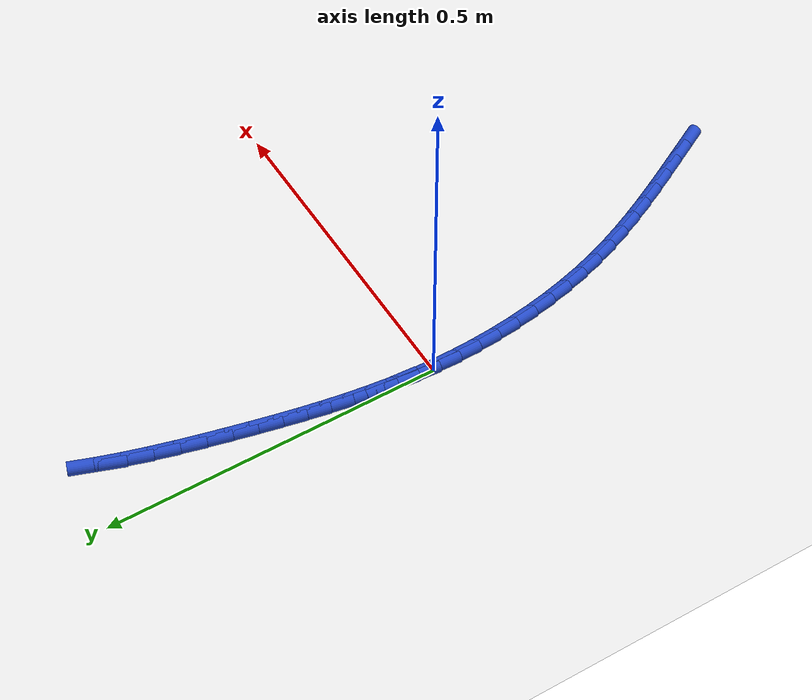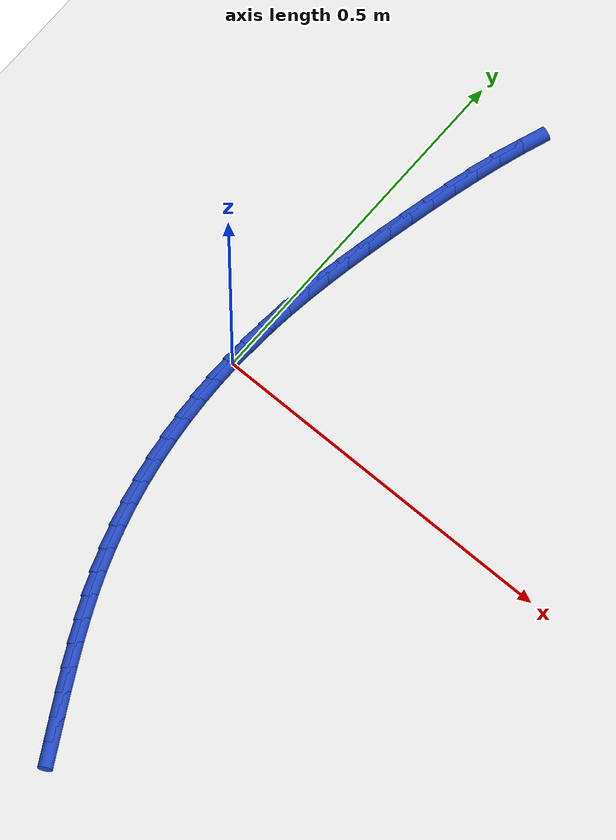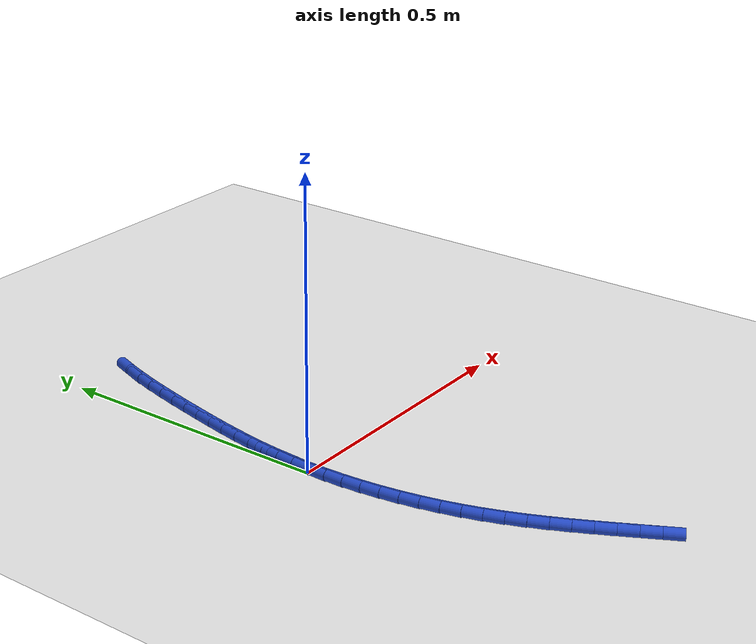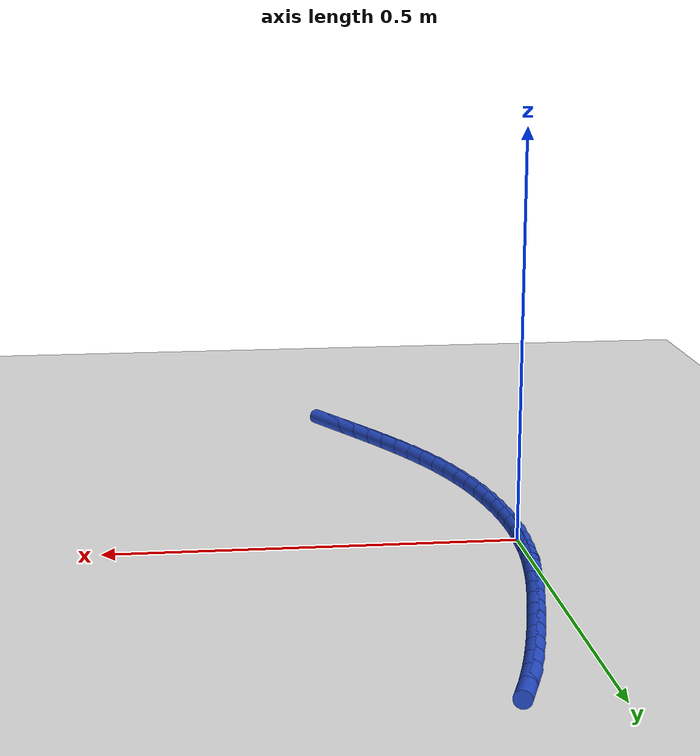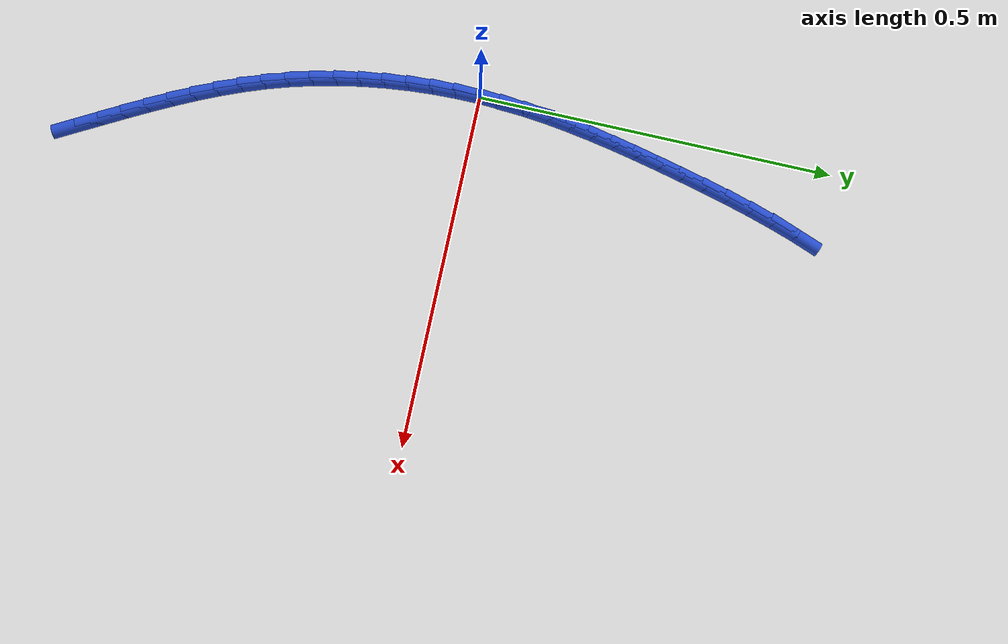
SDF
<sdf version="1.6">
 <world name="default">
  <model name="ground_plane">
   <static>1</static>
   <link name="link">
    <collision name="collision">
     <geometry><plane><normal>0 0 1</normal><size>100 100</size></plane></geometry>
     <surface><friction><ode><mu>100</mu><mu2>50</mu2></ode></friction></surface>
    </collision>
    <visual name="visual">
     <cast_shadows>0</cast_shadows>
     <geometry><plane><normal>0 0 1</normal><size>100 100</size></plane></geometry>
     <material>
      <script><uri>file://media/materials/scripts/gazebo.material</uri><name>Gazebo/WhiteGlow</name></script>
     </material>
    </visual>
   </link>
  </model>
  <model name="line">
   <link name="link_0">
    <pose>-1.734723475976807e-18 3.469446951953614e-17 0.01 0 1.57 1.531801911281765</pose>
    <collision name="collision">
     <geometry><cylinder><radius>0.01</radius><length>0.08</length></cylinder></geometry>
    </collision>
    <visual name="visual">
     <material>
      <script><name>Gazebo/Blue</name><uri>file://media/materials/scripts/gazebo.material</uri></script>
     </material>
     <geometry><cylinder><radius>0.01</radius><length>0.08</length></cylinder></geometry>
    </visual>
   </link>
   <link name="link_1">
    <pose>0.0012734789865258829 0.032641429173401716 0.01 0 1.57 1.4968240519907146</pose>
    <collision name="collision">
     <geometry><cylinder><radius>0.01</radius><length>0.08</length></cylinder></geometry>
    </collision>
    <visual name="visual">
     <material>
      <script><name>Gazebo/Blue</name><uri>file://media/materials/scripts/gazebo.material</uri></script>
     </material>
     <geometry><cylinder><radius>0.01</radius><length>0.08</length></cylinder></geometry>
    </visual>
   </link>
   <link name="link_2">
    <pose>0.003676940168216866 0.06507352291375909 0.01 0 1.57 1.464726742741518</pose>
    <collision name="collision">
     <geometry><cylinder><radius>0.01</radius><length>0.08</length></cylinder></geometry>
    </collision>
    <visual name="visual">
     <material>
      <script><name>Gazebo/Blue</name><uri>file://media/materials/scripts/gazebo.material</uri></script>
     </material>
     <geometry><cylinder><radius>0.01</radius><length>0.08</length></cylinder></geometry>
    </visual>
   </link>
   <link name="link_3">
    <pose>0.007118392818827004 0.09739698939090188 0.01 0 1.57 1.4358523234587244</pose>
    <collision name="collision">
     <geometry><cylinder><radius>0.01</radius><length>0.08</length></cylinder></geometry>
    </collision>
    <visual name="visual">
     <material>
      <script><name>Gazebo/Blue</name><uri>file://media/materials/scripts/gazebo.material</uri></script>
     </material>
     <geometry><cylinder><radius>0.01</radius><length>0.08</length></cylinder></geometry>
    </visual>
   </link>
   <link name="link_4">
    <pose>0.011505846212110347 0.1297125367746597 0.01 0 1.57 1.4104528048444238</pose>
    <collision name="collision">
     <geometry><cylinder><radius>0.01</radius><length>0.08</length></cylinder></geometry>
    </collision>
    <visual name="visual">
     <material>
      <script><name>Gazebo/Blue</name><uri>file://media/materials/scripts/gazebo.material</uri></script>
     </material>
     <geometry><cylinder><radius>0.01</radius><length>0.08</length></cylinder></geometry>
    </visual>
   </link>
   <link name="link_5">
    <pose>0.016747309621820958 0.16212087323486224 0.01 0 1.57 1.3886908578574864</pose>
    <collision name="collision">
     <geometry><cylinder><radius>0.01</radius><length>0.08</length></cylinder></geometry>
    </collision>
    <visual name="visual">
     <material>
      <script><name>Gazebo/Blue</name><uri>file://media/materials/scripts/gazebo.material</uri></script>
     </material>
     <geometry><cylinder><radius>0.01</radius><length>0.08</length></cylinder></geometry>
    </visual>
   </link>
   <link name="link_6">
    <pose>0.022750792321712884 0.19472270694133917 0.01 0 1.57 1.3706458397378873</pose>
    <collision name="collision">
     <geometry><cylinder><radius>0.01</radius><length>0.08</length></cylinder></geometry>
    </collision>
    <visual name="visual">
     <material>
      <script><name>Gazebo/Blue</name><uri>file://media/materials/scripts/gazebo.material</uri></script>
     </material>
     <geometry><cylinder><radius>0.01</radius><length>0.08</length></cylinder></geometry>
    </visual>
   </link>
   <link name="link_7">
    <pose>0.029424303585540195 0.22761874606392013 0.01 0 1.57 1.356323066493472</pose>
    <collision name="collision">
     <geometry><cylinder><radius>0.01</radius><length>0.08</length></cylinder></geometry>
    </collision>
    <visual name="visual">
     <material>
      <script><name>Gazebo/Blue</name><uri>file://media/materials/scripts/gazebo.material</uri></script>
     </material>
     <geometry><cylinder><radius>0.01</radius><length>0.08</length></cylinder></geometry>
    </visual>
   </link>
   <link name="link_8">
    <pose>0.03667585268705693 0.26090969877243475 0.01 0 1.57 1.345664667601172</pose>
    <collision name="collision">
     <geometry><cylinder><radius>0.01</radius><length>0.08</length></cylinder></geometry>
    </collision>
    <visual name="visual">
     <material>
      <script><name>Gazebo/Blue</name><uri>file://media/materials/scripts/gazebo.material</uri></script>
     </material>
     <geometry><cylinder><radius>0.01</radius><length>0.08</length></cylinder></geometry>
    </visual>
   </link>
   <link name="link_9">
    <pose>0.044413448900017145 0.29469627323671277 0.01 0 1.57 1.3371464687959038</pose>
    <collision name="collision">
     <geometry><cylinder><radius>0.01</radius><length>0.08</length></cylinder></geometry>
    </collision>
    <visual name="visual">
     <material>
      <script><name>Gazebo/Blue</name><uri>file://media/materials/scripts/gazebo.material</uri></script>
     </material>
     <geometry><cylinder><radius>0.01</radius><length>0.08</length></cylinder></geometry>
    </visual>
   </link>
   <link name="link_10">
    <pose>0.05258213571755998 0.32901897318575263 0.01 0 1.57 1.325019053801191</pose>
    <collision name="collision">
     <geometry><cylinder><radius>0.01</radius><length>0.08</length></cylinder></geometry>
    </collision>
    <visual name="visual">
     <material>
      <script><name>Gazebo/Blue</name><uri>file://media/materials/scripts/gazebo.material</uri></script>
     </material>
     <geometry><cylinder><radius>0.01</radius><length>0.08</length></cylinder></geometry>
    </visual>
   </link>
   <link name="link_11">
    <pose>0.06127586385185051 0.36367623228453894 0.01 0 1.57 1.3078039530621142</pose>
    <collision name="collision">
     <geometry><cylinder><radius>0.01</radius><length>0.08</length></cylinder></geometry>
    </collision>
    <visual name="visual">
     <material>
      <script><name>Gazebo/Blue</name><uri>file://media/materials/scripts/gazebo.material</uri></script>
     </material>
     <geometry><cylinder><radius>0.01</radius><length>0.08</length></cylinder></geometry>
    </visual>
   </link>
   <link name="link_12">
    <pose>0.0706260044056051 0.39840565198054995 0.01 0 1.57 1.2852954788354798</pose>
    <collision name="collision">
     <geometry><cylinder><radius>0.01</radius><length>0.08</length></cylinder></geometry>
    </collision>
    <visual name="visual">
     <material>
      <script><name>Gazebo/Blue</name><uri>file://media/materials/scripts/gazebo.material</uri></script>
     </material>
     <geometry><cylinder><radius>0.01</radius><length>0.08</length></cylinder></geometry>
    </visual>
   </link>
   <link name="link_13">
    <pose>0.08076392848173253 0.432944833720951 0.01 0 1.57 1.2571230382006597</pose>
    <collision name="collision">
     <geometry><cylinder><radius>0.01</radius><length>0.08</length></cylinder></geometry>
    </collision>
    <visual name="visual">
     <material>
      <script><name>Gazebo/Blue</name><uri>file://media/materials/scripts/gazebo.material</uri></script>
     </material>
     <geometry><cylinder><radius>0.01</radius><length>0.08</length></cylinder></geometry>
    </visual>
   </link>
   <link name="link_14">
    <pose>0.0918210071831415 0.46703137895290725 0.01 0 1.57 1.2227530717319732</pose>
    <collision name="collision">
     <geometry><cylinder><radius>0.01</radius><length>0.08</length></cylinder></geometry>
    </collision>
    <visual name="visual">
     <material>
      <script><name>Gazebo/Blue</name><uri>file://media/materials/scripts/gazebo.material</uri></script>
     </material>
     <geometry><cylinder><radius>0.01</radius><length>0.08</length></cylinder></geometry>
    </visual>
   </link>
   <link name="link_193">
    <pose>0.15773044238636422 -0.533517145422705 0.01 0 1.57 -1.075096764328752</pose>
    <collision name="collision">
     <geometry><cylinder><radius>0.01</radius><length>0.08</length></cylinder></geometry>
    </collision>
    <visual name="visual">
     <material>
      <script><name>Gazebo/Blue</name><uri>file://media/materials/scripts/gazebo.material</uri></script>
     </material>
     <geometry><cylinder><radius>0.01</radius><length>0.08</length></cylinder></geometry>
    </visual>
   </link>
   <link name="link_194">
    <pose>0.14178838887878084 -0.5040347703068165 0.01 0 1.57 -1.078588999723382</pose>
    <collision name="collision">
     <geometry><cylinder><radius>0.01</radius><length>0.08</length></cylinder></geometry>
    </collision>
    <visual name="visual">
     <material>
      <script><name>Gazebo/Blue</name><uri>file://media/materials/scripts/gazebo.material</uri></script>
     </material>
     <geometry><cylinder><radius>0.01</radius><length>0.08</length></cylinder></geometry>
    </visual>
   </link>
   <link name="link_195">
    <pose>0.1260379677037892 -0.4746620853926631 0.01 0 1.57 -1.0878517275900605</pose>
    <collision name="collision">
     <geometry><cylinder><radius>0.01</radius><length>0.08</length></cylinder></geometry>
    </collision>
    <visual name="visual">
     <material>
      <script><name>Gazebo/Blue</name><uri>file://media/materials/scripts/gazebo.material</uri></script>
     </material>
     <geometry><cylinder><radius>0.01</radius><length>0.08</length></cylinder></geometry>
    </visual>
   </link>
   <link name="link_196">
    <pose>0.1106371974870115 -0.4452914411533031 0.01 0 1.57 -1.102951496488025</pose>
    <collision name="collision">
     <geometry><cylinder><radius>0.01</radius><length>0.08</length></cylinder></geometry>
    </collision>
    <visual name="visual">
     <material>
      <script><name>Gazebo/Blue</name><uri>file://media/materials/scripts/gazebo.material</uri></script>
     </material>
     <geometry><cylinder><radius>0.01</radius><length>0.08</length></cylinder></geometry>
    </visual>
   </link>
   <link name="link_197">
    <pose>0.09574409685407108 -0.41581518806179624 0.01 0 1.57 -1.1239213115857316</pose>
    <collision name="collision">
     <geometry><cylinder><radius>0.01</radius><length>0.08</length></cylinder></geometry>
    </collision>
    <visual name="visual">
     <material>
      <script><name>Gazebo/Blue</name><uri>file://media/materials/scripts/gazebo.material</uri></script>
     </material>
     <geometry><cylinder><radius>0.01</radius><length>0.08</length></cylinder></geometry>
    </visual>
   </link>
   <link name="link_198">
    <pose>0.08151668443059008 -0.38612567659120023 0.01 0 1.57 -1.150744204762378</pose>
    <collision name="collision">
     <geometry><cylinder><radius>0.01</radius><length>0.08</length></cylinder></geometry>
    </collision>
    <visual name="visual">
     <material>
      <script><name>Gazebo/Blue</name><uri>file://media/materials/scripts/gazebo.material</uri></script>
     </material>
     <geometry><cylinder><radius>0.01</radius><length>0.08</length></cylinder></geometry>
    </visual>
   </link>
   <link name="link_199">
    <pose>0.06811297884219117 -0.3561152572145737 0.01 0 1.57 -1.1833314364813137</pose>
    <collision name="collision">
     <geometry><cylinder><radius>0.01</radius><length>0.08</length></cylinder></geometry>
    </collision>
    <visual name="visual">
     <material>
      <script><name>Gazebo/Blue</name><uri>file://media/materials/scripts/gazebo.material</uri></script>
     </material>
     <geometry><cylinder><radius>0.01</radius><length>0.08</length></cylinder></geometry>
    </visual>
   </link>
   <link name="link_200">
    <pose>0.05569099871449687 -0.32567628040497526 0.01 0 1.57 -1.2214969878255264</pose>
    <collision name="collision">
     <geometry><cylinder><radius>0.01</radius><length>0.08</length></cylinder></geometry>
    </collision>
    <visual name="visual">
     <material>
      <script><name>Gazebo/Blue</name><uri>file://media/materials/scripts/gazebo.material</uri></script>
     </material>
     <geometry><cylinder><radius>0.01</radius><length>0.08</length></cylinder></geometry>
    </visual>
   </link>
   <link name="link_201">
    <pose>0.044408762672986504 -0.2947010966356473 0.01 0 1.57 -1.263803848306552</pose>
    <collision name="collision">
     <geometry><cylinder><radius>0.01</radius><length>0.08</length></cylinder></geometry>
    </collision>
    <visual name="visual">
     <material>
      <script><name>Gazebo/Blue</name><uri>file://media/materials/scripts/gazebo.material</uri></script>
     </material>
     <geometry><cylinder><radius>0.01</radius><length>0.08</length></cylinder></geometry>
    </visual>
   </link>
   <link name="link_202">
    <pose>0.03439641061880392 -0.26311784090899504 0.01 0 1.57 -1.3056153151810443</pose>
    <collision name="collision">
     <geometry><cylinder><radius>0.01</radius><length>0.08</length></cylinder></geometry>
    </collision>
    <visual name="visual">
     <material>
      <script><name>Gazebo/Blue</name><uri>file://media/materials/scripts/gazebo.material</uri></script>
     </material>
     <geometry><cylinder><radius>0.01</radius><length>0.08</length></cylinder></geometry>
    </visual>
   </link>
   <link name="link_203">
    <pose>0.02567314445245841 -0.23099704585191377 0.01 0 1.57 -1.3460260722676844</pose>
    <collision name="collision">
     <geometry><cylinder><radius>0.01</radius><length>0.08</length></cylinder></geometry>
    </collision>
    <visual name="visual">
     <material>
      <script><name>Gazebo/Blue</name><uri>file://media/materials/scripts/gazebo.material</uri></script>
     </material>
     <geometry><cylinder><radius>0.01</radius><length>0.08</length></cylinder></geometry>
    </visual>
   </link>
   <link name="link_204">
    <pose>0.01823057505314649 -0.19844465933106567 0.01 0 1.57 -1.3852829261309967</pose>
    <collision name="collision">
     <geometry><cylinder><radius>0.01</radius><length>0.08</length></cylinder></geometry>
    </collision>
    <visual name="visual">
     <material>
      <script><name>Gazebo/Blue</name><uri>file://media/materials/scripts/gazebo.material</uri></script>
     </material>
     <geometry><cylinder><radius>0.01</radius><length>0.08</length></cylinder></geometry>
    </visual>
   </link>
   <link name="link_205">
    <pose>0.012060313300064953 -0.16556662921311374 0.01 0 1.57 -1.423629975213216</pose>
    <collision name="collision">
     <geometry><cylinder><radius>0.01</radius><length>0.08</length></cylinder></geometry>
    </collision>
    <visual name="visual">
     <material>
      <script><name>Gazebo/Blue</name><uri>file://media/materials/scripts/gazebo.material</uri></script>
     </material>
     <geometry><cylinder><radius>0.01</radius><length>0.08</length></cylinder></geometry>
    </visual>
   </link>
   <link name="link_206">
    <pose>0.007153970072410555 -0.1324689033647209 0.01 0 1.57 -1.4613096373368208</pose>
    <collision name="collision">
     <geometry><cylinder><radius>0.01</radius><length>0.08</length></cylinder></geometry>
    </collision>
    <visual name="visual">
     <material>
      <script><name>Gazebo/Blue</name><uri>file://media/materials/scripts/gazebo.material</uri></script>
     </material>
     <geometry><cylinder><radius>0.01</radius><length>0.08</length></cylinder></geometry>
    </visual>
   </link>
   <link name="link_207">
    <pose>0.003503156249380089 -0.09925742965255012 0.01 0 1.57 -1.4985644123638249</pose>
    <collision name="collision">
     <geometry><cylinder><radius>0.01</radius><length>0.08</length></cylinder></geometry>
    </collision>
    <visual name="visual">
     <material>
      <script><name>Gazebo/Blue</name><uri>file://media/materials/scripts/gazebo.material</uri></script>
     </material>
     <geometry><cylinder><radius>0.01</radius><length>0.08</length></cylinder></geometry>
    </visual>
   </link>
   <link name="link_208">
    <pose>0.0010994827101703203 -0.06603815594326444 0.01 0 1.57 -1.5356392374457584</pose>
    <collision name="collision">
     <geometry><cylinder><radius>0.01</radius><length>0.08</length></cylinder></geometry>
    </collision>
    <visual name="visual">
     <material>
      <script><name>Gazebo/Blue</name><uri>file://media/materials/scripts/gazebo.material</uri></script>
     </material>
     <geometry><cylinder><radius>0.01</radius><length>0.08</length></cylinder></geometry>
    </visual>
   </link>
   <link name="link_209">
    <pose>-6.543966602197936e-05 -0.032917030103525965 0.01 0 1.57 1.568808310877125</pose>
    <collision name="collision">
     <geometry><cylinder><radius>0.01</radius><length>0.08</length></cylinder></geometry>
    </collision>
    <visual name="visual">
     <material>
      <script><name>Gazebo/Blue</name><uri>file://media/materials/scripts/gazebo.material</uri></script>
     </material>
     <geometry><cylinder><radius>0.01</radius><length>0.08</length></cylinder></geometry>
    </visual>
   </link>
   <link name="link_210">
    <pose>-1.734723475976807e-18 -1.3877787807814457e-17 0.01 0 1.57 1.5313341018444306</pose>
    <collision name="collision">
     <geometry><cylinder><radius>0.01</radius><length>0.08</length></cylinder></geometry>
    </collision>
    <visual name="visual">
     <material>
      <script><name>Gazebo/Blue</name><uri>file://media/materials/scripts/gazebo.material</uri></script>
     </material>
     <geometry><cylinder><radius>0.01</radius><length>0.08</length></cylinder></geometry>
    </visual>
   </link>
   <link name="link_211">
    <pose>0.0012874125874329963 0.03260698650065275 0.01 0 1.57 1.4932596606101354</pose>
    <collision name="collision">
     <geometry><cylinder><radius>0.01</radius><length>0.08</length></cylinder></geometry>
    </collision>
    <visual name="visual">
     <material>
      <script><name>Gazebo/Blue</name><uri>file://media/materials/scripts/gazebo.material</uri></script>
     </material>
     <geometry><cylinder><radius>0.01</radius><length>0.08</length></cylinder></geometry>
    </visual>
   </link>
   <link name="link_212">
    <pose>0.0037884089754739465 0.06479798153177012 0.01 0 1.57 1.5123978818042638</pose>
    <collision name="collision">
     <geometry><cylinder><radius>0.01</radius><length>0.08</length></cylinder></geometry>
    </collision>
    <visual name="visual">
     <material>
      <script><name>Gazebo/Blue</name><uri>file://media/materials/scripts/gazebo.material</uri></script>
     </material>
     <geometry><cylinder><radius>0.01</radius><length>0.08</length></cylinder></geometry>
    </visual>
   </link>
  </model>
 </world>
</sdf>
